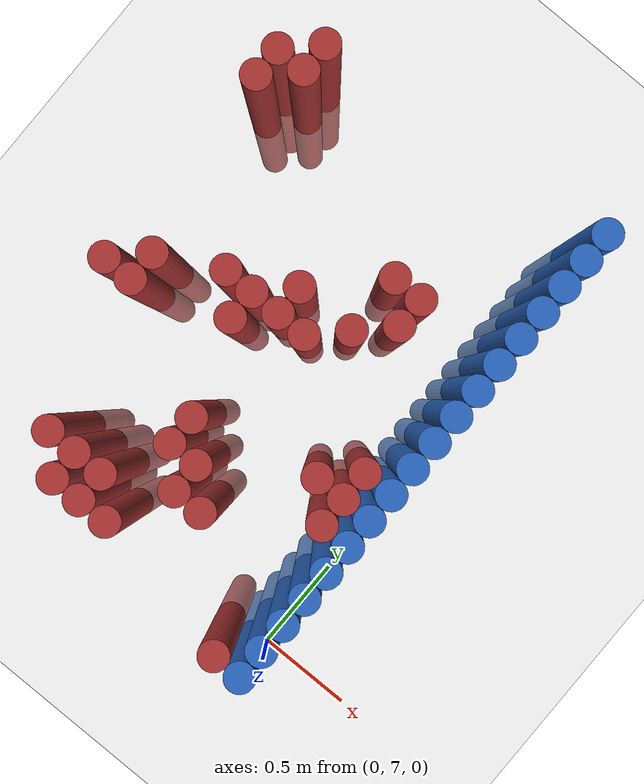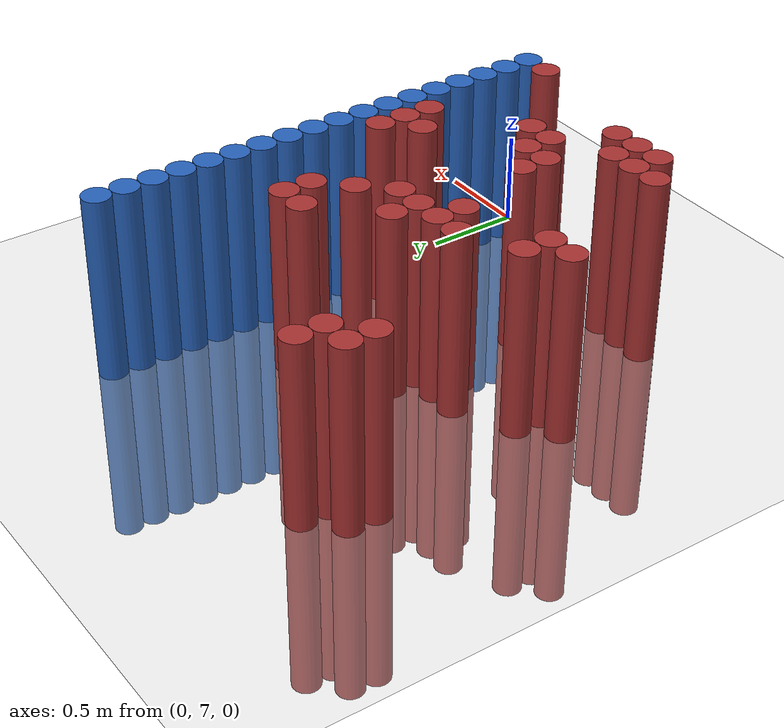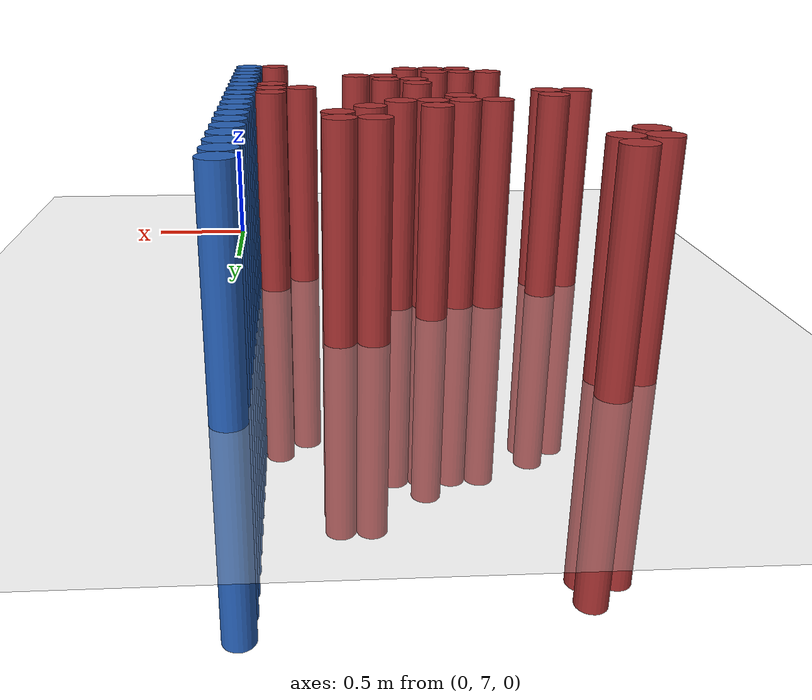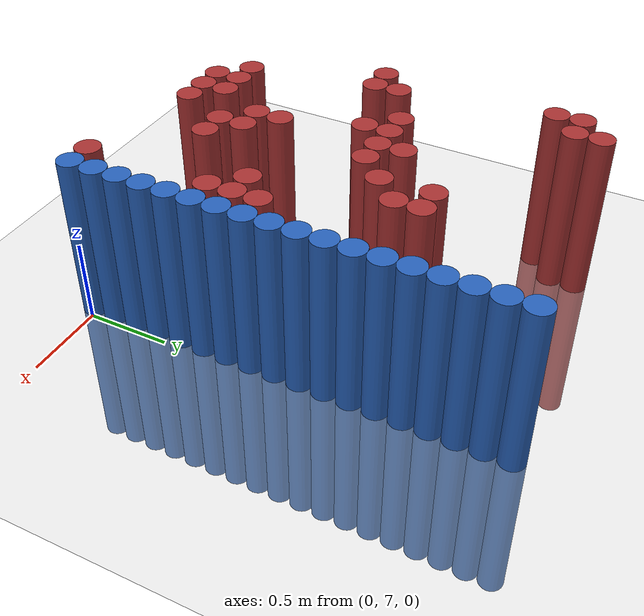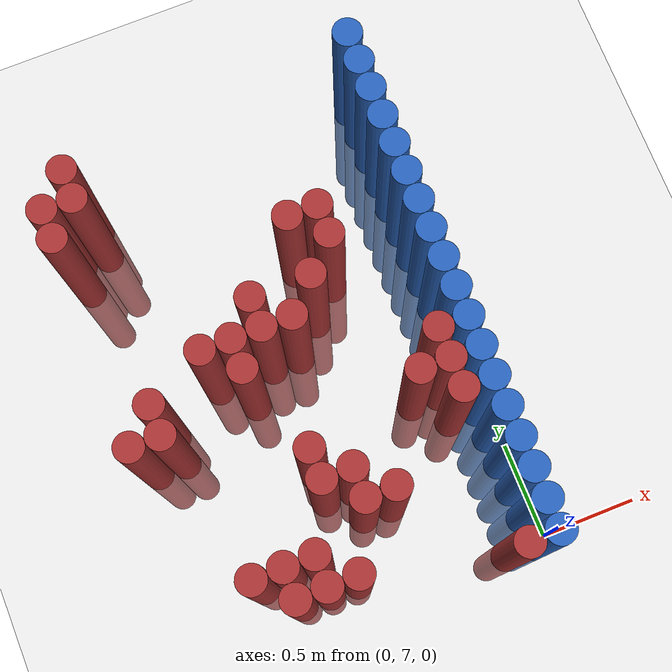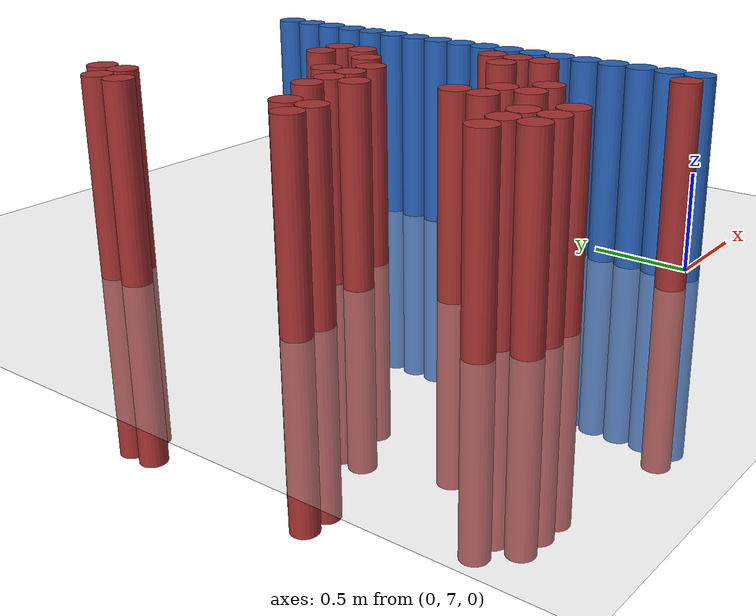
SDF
<sdf version="1.6">
 <world name="default">
  <model name="ground_plane">
   <static>1</static>
   <link name="link">
    <collision name="collision">
     <geometry><plane><normal>0 0 1</normal><size>100 100</size></plane></geometry>
     <surface><friction><ode><mu>100</mu><mu2>50</mu2></ode></friction></surface>
    </collision>
    <visual name="visual">
     <cast_shadows>0</cast_shadows>
     <geometry><plane><normal>0 0 1</normal><size>100 100</size></plane></geometry>
     <material>
      <script><uri>file://media/materials/scripts/gazebo.material</uri><name>Gazebo/Grey</name></script>
     </material>
    </visual>
   </link>
  </model>
  <model name="unit_cylinder_162">
   <static>1</static>
   <pose>-1.725000 8.025000 0.000000 0.000000 0.000000 0.000000</pose>
   <link name="link">
    <inertial>
     <mass>1</mass>
     <inertia><ixx>0.145833</ixx><ixy>0</ixy><ixz>0</ixz><iyy>0.145833</iyy><iyz>0</iyz><izz>0.125</izz></inertia>
    </inertial>
    <collision name="collision">
     <geometry><cylinder><radius>0.075000</radius><length>2</length></cylinder></geometry>
    </collision>
    <visual name="visual">
     <geometry><cylinder><radius>0.075000</radius><length>2</length></cylinder></geometry>
     <material>
      <ambient>0.648000 0.192000 0.192000 1</ambient>
      <diffuse>0.648000 0.192000 0.192000 1</diffuse>
     </material>
     <material>
      <script><name>Gazebo/Grey</name><uri>file://media/materials/scripts/gazebo.material</uri></script>
     </material>
    </visual>
   </link>
  </model>
  <model name="unit_cylinder_163">
   <static>1</static>
   <pose>-1.725000 9.075000 0.000000 0.000000 0.000000 0.000000</pose>
   <link name="link">
    <inertial>
     <mass>1</mass>
     <inertia><ixx>0.145833</ixx><ixy>0</ixy><ixz>0</ixz><iyy>0.145833</iyy><iyz>0</iyz><izz>0.125</izz></inertia>
    </inertial>
    <collision name="collision">
     <geometry><cylinder><radius>0.075000</radius><length>2</length></cylinder></geometry>
    </collision>
    <visual name="visual">
     <geometry><cylinder><radius>0.075000</radius><length>2</length></cylinder></geometry>
     <material>
      <ambient>0.648000 0.192000 0.192000 1</ambient>
      <diffuse>0.648000 0.192000 0.192000 1</diffuse>
     </material>
     <material>
      <script><name>Gazebo/Grey</name><uri>file://media/materials/scripts/gazebo.material</uri></script>
     </material>
    </visual>
   </link>
  </model>
  <model name="unit_cylinder_164">
   <static>1</static>
   <pose>-1.725000 9.225000 0.000000 0.000000 0.000000 0.000000</pose>
   <link name="link">
    <inertial>
     <mass>1</mass>
     <inertia><ixx>0.145833</ixx><ixy>0</ixy><ixz>0</ixz><iyy>0.145833</iyy><iyz>0</iyz><izz>0.125</izz></inertia>
    </inertial>
    <collision name="collision">
     <geometry><cylinder><radius>0.075000</radius><length>2</length></cylinder></geometry>
    </collision>
    <visual name="visual">
     <geometry><cylinder><radius>0.075000</radius><length>2</length></cylinder></geometry>
     <material>
      <ambient>0.648000 0.192000 0.192000 1</ambient>
      <diffuse>0.648000 0.192000 0.192000 1</diffuse>
     </material>
     <material>
      <script><name>Gazebo/Grey</name><uri>file://media/materials/scripts/gazebo.material</uri></script>
     </material>
    </visual>
   </link>
  </model>
  <model name="unit_cylinder_165">
   <static>1</static>
   <pose>-1.575000 8.025000 0.000000 0.000000 0.000000 0.000000</pose>
   <link name="link">
    <inertial>
     <mass>1</mass>
     <inertia><ixx>0.145833</ixx><ixy>0</ixy><ixz>0</ixz><iyy>0.145833</iyy><iyz>0</iyz><izz>0.125</izz></inertia>
    </inertial>
    <collision name="collision">
     <geometry><cylinder><radius>0.075000</radius><length>2</length></cylinder></geometry>
    </collision>
    <visual name="visual">
     <geometry><cylinder><radius>0.075000</radius><length>2</length></cylinder></geometry>
     <material>
      <ambient>0.648000 0.192000 0.192000 1</ambient>
      <diffuse>0.648000 0.192000 0.192000 1</diffuse>
     </material>
     <material>
      <script><name>Gazebo/Grey</name><uri>file://media/materials/scripts/gazebo.material</uri></script>
     </material>
    </visual>
   </link>
  </model>
  <model name="unit_cylinder_166">
   <static>1</static>
   <pose>-1.575000 8.175000 0.000000 0.000000 0.000000 0.000000</pose>
   <link name="link">
    <inertial>
     <mass>1</mass>
     <inertia><ixx>0.145833</ixx><ixy>0</ixy><ixz>0</ixz><iyy>0.145833</iyy><iyz>0</iyz><izz>0.125</izz></inertia>
    </inertial>
    <collision name="collision">
     <geometry><cylinder><radius>0.075000</radius><length>2</length></cylinder></geometry>
    </collision>
    <visual name="visual">
     <geometry><cylinder><radius>0.075000</radius><length>2</length></cylinder></geometry>
     <material>
      <ambient>0.648000 0.192000 0.192000 1</ambient>
      <diffuse>0.648000 0.192000 0.192000 1</diffuse>
     </material>
     <material>
      <script><name>Gazebo/Grey</name><uri>file://media/materials/scripts/gazebo.material</uri></script>
     </material>
    </visual>
   </link>
  </model>
  <model name="unit_cylinder_167">
   <static>1</static>
   <pose>-1.575000 9.225000 0.000000 0.000000 0.000000 0.000000</pose>
   <link name="link">
    <inertial>
     <mass>1</mass>
     <inertia><ixx>0.145833</ixx><ixy>0</ixy><ixz>0</ixz><iyy>0.145833</iyy><iyz>0</iyz><izz>0.125</izz></inertia>
    </inertial>
    <collision name="collision">
     <geometry><cylinder><radius>0.075000</radius><length>2</length></cylinder></geometry>
    </collision>
    <visual name="visual">
     <geometry><cylinder><radius>0.075000</radius><length>2</length></cylinder></geometry>
     <material>
      <ambient>0.648000 0.192000 0.192000 1</ambient>
      <diffuse>0.648000 0.192000 0.192000 1</diffuse>
     </material>
     <material>
      <script><name>Gazebo/Grey</name><uri>file://media/materials/scripts/gazebo.material</uri></script>
     </material>
    </visual>
   </link>
  </model>
  <model name="unit_cylinder_168">
   <static>1</static>
   <pose>-1.575000 9.375000 0.000000 0.000000 0.000000 0.000000</pose>
   <link name="link">
    <inertial>
     <mass>1</mass>
     <inertia><ixx>0.145833</ixx><ixy>0</ixy><ixz>0</ixz><iyy>0.145833</iyy><iyz>0</iyz><izz>0.125</izz></inertia>
    </inertial>
    <collision name="collision">
     <geometry><cylinder><radius>0.075000</radius><length>2</length></cylinder></geometry>
    </collision>
    <visual name="visual">
     <geometry><cylinder><radius>0.075000</radius><length>2</length></cylinder></geometry>
     <material>
      <ambient>0.648000 0.192000 0.192000 1</ambient>
      <diffuse>0.648000 0.192000 0.192000 1</diffuse>
     </material>
     <material>
      <script><name>Gazebo/Grey</name><uri>file://media/materials/scripts/gazebo.material</uri></script>
     </material>
    </visual>
   </link>
  </model>
  <model name="unit_cylinder_169">
   <static>1</static>
   <pose>-1.425000 7.275000 0.000000 0.000000 0.000000 0.000000</pose>
   <link name="link">
    <inertial>
     <mass>1</mass>
     <inertia><ixx>0.145833</ixx><ixy>0</ixy><ixz>0</ixz><iyy>0.145833</iyy><iyz>0</iyz><izz>0.125</izz></inertia>
    </inertial>
    <collision name="collision">
     <geometry><cylinder><radius>0.075000</radius><length>2</length></cylinder></geometry>
    </collision>
    <visual name="visual">
     <geometry><cylinder><radius>0.075000</radius><length>2</length></cylinder></geometry>
     <material>
      <ambient>0.648000 0.192000 0.192000 1</ambient>
      <diffuse>0.648000 0.192000 0.192000 1</diffuse>
     </material>
     <material>
      <script><name>Gazebo/Grey</name><uri>file://media/materials/scripts/gazebo.material</uri></script>
     </material>
    </visual>
   </link>
  </model>
  <model name="unit_cylinder_173">
   <static>1</static>
   <pose>-1.275000 7.125000 0.000000 0.000000 0.000000 0.000000</pose>
   <link name="link">
    <inertial>
     <mass>1</mass>
     <inertia><ixx>0.145833</ixx><ixy>0</ixy><ixz>0</ixz><iyy>0.145833</iyy><iyz>0</iyz><izz>0.125</izz></inertia>
    </inertial>
    <collision name="collision">
     <geometry><cylinder><radius>0.075000</radius><length>2</length></cylinder></geometry>
    </collision>
    <visual name="visual">
     <geometry><cylinder><radius>0.075000</radius><length>2</length></cylinder></geometry>
     <material>
      <ambient>0.648000 0.192000 0.192000 1</ambient>
      <diffuse>0.648000 0.192000 0.192000 1</diffuse>
     </material>
     <material>
      <script><name>Gazebo/Grey</name><uri>file://media/materials/scripts/gazebo.material</uri></script>
     </material>
    </visual>
   </link>
  </model>
  <model name="unit_cylinder_174">
   <static>1</static>
   <pose>-1.275000 7.275000 0.000000 0.000000 0.000000 0.000000</pose>
   <link name="link">
    <inertial>
     <mass>1</mass>
     <inertia><ixx>0.145833</ixx><ixy>0</ixy><ixz>0</ixz><iyy>0.145833</iyy><iyz>0</iyz><izz>0.125</izz></inertia>
    </inertial>
    <collision name="collision">
     <geometry><cylinder><radius>0.075000</radius><length>2</length></cylinder></geometry>
    </collision>
    <visual name="visual">
     <geometry><cylinder><radius>0.075000</radius><length>2</length></cylinder></geometry>
     <material>
      <ambient>0.648000 0.192000 0.192000 1</ambient>
      <diffuse>0.648000 0.192000 0.192000 1</diffuse>
     </material>
     <material>
      <script><name>Gazebo/Grey</name><uri>file://media/materials/scripts/gazebo.material</uri></script>
     </material>
    </visual>
   </link>
  </model>
  <model name="unit_cylinder_175">
   <static>1</static>
   <pose>-1.275000 8.325000 0.000000 0.000000 0.000000 0.000000</pose>
   <link name="link">
    <inertial>
     <mass>1</mass>
     <inertia><ixx>0.145833</ixx><ixy>0</ixy><ixz>0</ixz><iyy>0.145833</iyy><iyz>0</iyz><izz>0.125</izz></inertia>
    </inertial>
    <collision name="collision">
     <geometry><cylinder><radius>0.075000</radius><length>2</length></cylinder></geometry>
    </collision>
    <visual name="visual">
     <geometry><cylinder><radius>0.075000</radius><length>2</length></cylinder></geometry>
     <material>
      <ambient>0.648000 0.192000 0.192000 1</ambient>
      <diffuse>0.648000 0.192000 0.192000 1</diffuse>
     </material>
     <material>
      <script><name>Gazebo/Grey</name><uri>file://media/materials/scripts/gazebo.material</uri></script>
     </material>
    </visual>
   </link>
  </model>
  <model name="unit_cylinder_178">
   <static>1</static>
   <pose>-1.125000 7.125000 0.000000 0.000000 0.000000 0.000000</pose>
   <link name="link">
    <inertial>
     <mass>1</mass>
     <inertia><ixx>0.145833</ixx><ixy>0</ixy><ixz>0</ixz><iyy>0.145833</iyy><iyz>0</iyz><izz>0.125</izz></inertia>
    </inertial>
    <collision name="collision">
     <geometry><cylinder><radius>0.075000</radius><length>2</length></cylinder></geometry>
    </collision>
    <visual name="visual">
     <geometry><cylinder><radius>0.075000</radius><length>2</length></cylinder></geometry>
     <material>
      <ambient>0.648000 0.192000 0.192000 1</ambient>
      <diffuse>0.648000 0.192000 0.192000 1</diffuse>
     </material>
     <material>
      <script><name>Gazebo/Grey</name><uri>file://media/materials/scripts/gazebo.material</uri></script>
     </material>
    </visual>
   </link>
  </model>
  <model name="unit_cylinder_179">
   <static>1</static>
   <pose>-1.125000 7.275000 0.000000 0.000000 0.000000 0.000000</pose>
   <link name="link">
    <inertial>
     <mass>1</mass>
     <inertia><ixx>0.145833</ixx><ixy>0</ixy><ixz>0</ixz><iyy>0.145833</iyy><iyz>0</iyz><izz>0.125</izz></inertia>
    </inertial>
    <collision name="collision">
     <geometry><cylinder><radius>0.075000</radius><length>2</length></cylinder></geometry>
    </collision>
    <visual name="visual">
     <geometry><cylinder><radius>0.075000</radius><length>2</length></cylinder></geometry>
     <material>
      <ambient>0.648000 0.192000 0.192000 1</ambient>
      <diffuse>0.648000 0.192000 0.192000 1</diffuse>
     </material>
     <material>
      <script><name>Gazebo/Grey</name><uri>file://media/materials/scripts/gazebo.material</uri></script>
     </material>
    </visual>
   </link>
  </model>
  <model name="unit_cylinder_180">
   <static>1</static>
   <pose>-1.125000 8.175000 0.000000 0.000000 0.000000 0.000000</pose>
   <link name="link">
    <inertial>
     <mass>1</mass>
     <inertia><ixx>0.145833</ixx><ixy>0</ixy><ixz>0</ixz><iyy>0.145833</iyy><iyz>0</iyz><izz>0.125</izz></inertia>
    </inertial>
    <collision name="collision">
     <geometry><cylinder><radius>0.075000</radius><length>2</length></cylinder></geometry>
    </collision>
    <visual name="visual">
     <geometry><cylinder><radius>0.075000</radius><length>2</length></cylinder></geometry>
     <material>
      <ambient>0.648000 0.192000 0.192000 1</ambient>
      <diffuse>0.648000 0.192000 0.192000 1</diffuse>
     </material>
     <material>
      <script><name>Gazebo/Grey</name><uri>file://media/materials/scripts/gazebo.material</uri></script>
     </material>
    </visual>
   </link>
  </model>
  <model name="unit_cylinder_181">
   <static>1</static>
   <pose>-1.125000 8.325000 0.000000 0.000000 0.000000 0.000000</pose>
   <link name="link">
    <inertial>
     <mass>1</mass>
     <inertia><ixx>0.145833</ixx><ixy>0</ixy><ixz>0</ixz><iyy>0.145833</iyy><iyz>0</iyz><izz>0.125</izz></inertia>
    </inertial>
    <collision name="collision">
     <geometry><cylinder><radius>0.075000</radius><length>2</length></cylinder></geometry>
    </collision>
    <visual name="visual">
     <geometry><cylinder><radius>0.075000</radius><length>2</length></cylinder></geometry>
     <material>
      <ambient>0.648000 0.192000 0.192000 1</ambient>
      <diffuse>0.648000 0.192000 0.192000 1</diffuse>
     </material>
     <material>
      <script><name>Gazebo/Grey</name><uri>file://media/materials/scripts/gazebo.material</uri></script>
     </material>
    </visual>
   </link>
  </model>
  <model name="unit_cylinder_182">
   <static>1</static>
   <pose>-0.975000 7.125000 0.000000 0.000000 0.000000 0.000000</pose>
   <link name="link">
    <inertial>
     <mass>1</mass>
     <inertia><ixx>0.145833</ixx><ixy>0</ixy><ixz>0</ixz><iyy>0.145833</iyy><iyz>0</iyz><izz>0.125</izz></inertia>
    </inertial>
    <collision name="collision">
     <geometry><cylinder><radius>0.075000</radius><length>2</length></cylinder></geometry>
    </collision>
    <visual name="visual">
     <geometry><cylinder><radius>0.075000</radius><length>2</length></cylinder></geometry>
     <material>
      <ambient>0.648000 0.192000 0.192000 1</ambient>
      <diffuse>0.648000 0.192000 0.192000 1</diffuse>
     </material>
     <material>
      <script><name>Gazebo/Grey</name><uri>file://media/materials/scripts/gazebo.material</uri></script>
     </material>
    </visual>
   </link>
  </model>
  <model name="unit_cylinder_183">
   <static>1</static>
   <pose>-0.975000 7.575000 0.000000 0.000000 0.000000 0.000000</pose>
   <link name="link">
    <inertial>
     <mass>1</mass>
     <inertia><ixx>0.145833</ixx><ixy>0</ixy><ixz>0</ixz><iyy>0.145833</iyy><iyz>0</iyz><izz>0.125</izz></inertia>
    </inertial>
    <collision name="collision">
     <geometry><cylinder><radius>0.075000</radius><length>2</length></cylinder></geometry>
    </collision>
    <visual name="visual">
     <geometry><cylinder><radius>0.075000</radius><length>2</length></cylinder></geometry>
     <material>
      <ambient>0.648000 0.192000 0.192000 1</ambient>
      <diffuse>0.648000 0.192000 0.192000 1</diffuse>
     </material>
     <material>
      <script><name>Gazebo/Grey</name><uri>file://media/materials/scripts/gazebo.material</uri></script>
     </material>
    </visual>
   </link>
  </model>
  <model name="unit_cylinder_184">
   <static>1</static>
   <pose>-0.975000 7.725000 0.000000 0.000000 0.000000 0.000000</pose>
   <link name="link">
    <inertial>
     <mass>1</mass>
     <inertia><ixx>0.145833</ixx><ixy>0</ixy><ixz>0</ixz><iyy>0.145833</iyy><iyz>0</iyz><izz>0.125</izz></inertia>
    </inertial>
    <collision name="collision">
     <geometry><cylinder><radius>0.075000</radius><length>2</length></cylinder></geometry>
    </collision>
    <visual name="visual">
     <geometry><cylinder><radius>0.075000</radius><length>2</length></cylinder></geometry>
     <material>
      <ambient>0.648000 0.192000 0.192000 1</ambient>
      <diffuse>0.648000 0.192000 0.192000 1</diffuse>
     </material>
     <material>
      <script><name>Gazebo/Grey</name><uri>file://media/materials/scripts/gazebo.material</uri></script>
     </material>
    </visual>
   </link>
  </model>
  <model name="unit_cylinder_185">
   <static>1</static>
   <pose>-0.975000 8.325000 0.000000 0.000000 0.000000 0.000000</pose>
   <link name="link">
    <inertial>
     <mass>1</mass>
     <inertia><ixx>0.145833</ixx><ixy>0</ixy><ixz>0</ixz><iyy>0.145833</iyy><iyz>0</iyz><izz>0.125</izz></inertia>
    </inertial>
    <collision name="collision">
     <geometry><cylinder><radius>0.075000</radius><length>2</length></cylinder></geometry>
    </collision>
    <visual name="visual">
     <geometry><cylinder><radius>0.075000</radius><length>2</length></cylinder></geometry>
     <material>
      <ambient>0.648000 0.192000 0.192000 1</ambient>
      <diffuse>0.648000 0.192000 0.192000 1</diffuse>
     </material>
     <material>
      <script><name>Gazebo/Grey</name><uri>file://media/materials/scripts/gazebo.material</uri></script>
     </material>
    </visual>
   </link>
  </model>
  <model name="unit_cylinder_186">
   <static>1</static>
   <pose>-0.975000 8.475000 0.000000 0.000000 0.000000 0.000000</pose>
   <link name="link">
    <inertial>
     <mass>1</mass>
     <inertia><ixx>0.145833</ixx><ixy>0</ixy><ixz>0</ixz><iyy>0.145833</iyy><iyz>0</iyz><izz>0.125</izz></inertia>
    </inertial>
    <collision name="collision">
     <geometry><cylinder><radius>0.075000</radius><length>2</length></cylinder></geometry>
    </collision>
    <visual name="visual">
     <geometry><cylinder><radius>0.075000</radius><length>2</length></cylinder></geometry>
     <material>
      <ambient>0.648000 0.192000 0.192000 1</ambient>
      <diffuse>0.648000 0.192000 0.192000 1</diffuse>
     </material>
     <material>
      <script><name>Gazebo/Grey</name><uri>file://media/materials/scripts/gazebo.material</uri></script>
     </material>
    </visual>
   </link>
  </model>
  <model name="unit_cylinder_187">
   <static>1</static>
   <pose>-0.825000 7.425000 0.000000 0.000000 0.000000 0.000000</pose>
   <link name="link">
    <inertial>
     <mass>1</mass>
     <inertia><ixx>0.145833</ixx><ixy>0</ixy><ixz>0</ixz><iyy>0.145833</iyy><iyz>0</iyz><izz>0.125</izz></inertia>
    </inertial>
    <collision name="collision">
     <geometry><cylinder><radius>0.075000</radius><length>2</length></cylinder></geometry>
    </collision>
    <visual name="visual">
     <geometry><cylinder><radius>0.075000</radius><length>2</length></cylinder></geometry>
     <material>
      <ambient>0.648000 0.192000 0.192000 1</ambient>
      <diffuse>0.648000 0.192000 0.192000 1</diffuse>
     </material>
     <material>
      <script><name>Gazebo/Grey</name><uri>file://media/materials/scripts/gazebo.material</uri></script>
     </material>
    </visual>
   </link>
  </model>
  <model name="unit_cylinder_188">
   <static>1</static>
   <pose>-0.825000 7.575000 0.000000 0.000000 0.000000 0.000000</pose>
   <link name="link">
    <inertial>
     <mass>1</mass>
     <inertia><ixx>0.145833</ixx><ixy>0</ixy><ixz>0</ixz><iyy>0.145833</iyy><iyz>0</iyz><izz>0.125</izz></inertia>
    </inertial>
    <collision name="collision">
     <geometry><cylinder><radius>0.075000</radius><length>2</length></cylinder></geometry>
    </collision>
    <visual name="visual">
     <geometry><cylinder><radius>0.075000</radius><length>2</length></cylinder></geometry>
     <material>
      <ambient>0.648000 0.192000 0.192000 1</ambient>
      <diffuse>0.648000 0.192000 0.192000 1</diffuse>
     </material>
     <material>
      <script><name>Gazebo/Grey</name><uri>file://media/materials/scripts/gazebo.material</uri></script>
     </material>
    </visual>
   </link>
  </model>
  <model name="unit_cylinder_189">
   <static>1</static>
   <pose>-0.825000 8.325000 0.000000 0.000000 0.000000 0.000000</pose>
   <link name="link">
    <inertial>
     <mass>1</mass>
     <inertia><ixx>0.145833</ixx><ixy>0</ixy><ixz>0</ixz><iyy>0.145833</iyy><iyz>0</iyz><izz>0.125</izz></inertia>
    </inertial>
    <collision name="collision">
     <geometry><cylinder><radius>0.075000</radius><length>2</length></cylinder></geometry>
    </collision>
    <visual name="visual">
     <geometry><cylinder><radius>0.075000</radius><length>2</length></cylinder></geometry>
     <material>
      <ambient>0.648000 0.192000 0.192000 1</ambient>
      <diffuse>0.648000 0.192000 0.192000 1</diffuse>
     </material>
     <material>
      <script><name>Gazebo/Grey</name><uri>file://media/materials/scripts/gazebo.material</uri></script>
     </material>
    </visual>
   </link>
  </model>
  <model name="unit_cylinder_193">
   <static>1</static>
   <pose>-0.675000 7.425000 0.000000 0.000000 0.000000 0.000000</pose>
   <link name="link">
    <inertial>
     <mass>1</mass>
     <inertia><ixx>0.145833</ixx><ixy>0</ixy><ixz>0</ixz><iyy>0.145833</iyy><iyz>0</iyz><izz>0.125</izz></inertia>
    </inertial>
    <collision name="collision">
     <geometry><cylinder><radius>0.075000</radius><length>2</length></cylinder></geometry>
    </collision>
    <visual name="visual">
     <geometry><cylinder><radius>0.075000</radius><length>2</length></cylinder></geometry>
     <material>
      <ambient>0.648000 0.192000 0.192000 1</ambient>
      <diffuse>0.648000 0.192000 0.192000 1</diffuse>
     </material>
     <material>
      <script><name>Gazebo/Grey</name><uri>file://media/materials/scripts/gazebo.material</uri></script>
     </material>
    </visual>
   </link>
  </model>
  <model name="unit_cylinder_194">
   <static>1</static>
   <pose>-0.675000 8.475000 0.000000 0.000000 0.000000 0.000000</pose>
   <link name="link">
    <inertial>
     <mass>1</mass>
     <inertia><ixx>0.145833</ixx><ixy>0</ixy><ixz>0</ixz><iyy>0.145833</iyy><iyz>0</iyz><izz>0.125</izz></inertia>
    </inertial>
    <collision name="collision">
     <geometry><cylinder><radius>0.075000</radius><length>2</length></cylinder></geometry>
    </collision>
    <visual name="visual">
     <geometry><cylinder><radius>0.075000</radius><length>2</length></cylinder></geometry>
     <material>
      <ambient>0.648000 0.192000 0.192000 1</ambient>
      <diffuse>0.648000 0.192000 0.192000 1</diffuse>
     </material>
     <material>
      <script><name>Gazebo/Grey</name><uri>file://media/materials/scripts/gazebo.material</uri></script>
     </material>
    </visual>
   </link>
  </model>
  <model name="unit_cylinder_195">
   <static>1</static>
   <pose>-0.675000 8.775000 0.000000 0.000000 0.000000 0.000000</pose>
   <link name="link">
    <inertial>
     <mass>1</mass>
     <inertia><ixx>0.145833</ixx><ixy>0</ixy><ixz>0</ixz><iyy>0.145833</iyy><iyz>0</iyz><izz>0.125</izz></inertia>
    </inertial>
    <collision name="collision">
     <geometry><cylinder><radius>0.075000</radius><length>2</length></cylinder></geometry>
    </collision>
    <visual name="visual">
     <geometry><cylinder><radius>0.075000</radius><length>2</length></cylinder></geometry>
     <material>
      <ambient>0.648000 0.192000 0.192000 1</ambient>
      <diffuse>0.648000 0.192000 0.192000 1</diffuse>
     </material>
     <material>
      <script><name>Gazebo/Grey</name><uri>file://media/materials/scripts/gazebo.material</uri></script>
     </material>
    </visual>
   </link>
  </model>
  <model name="unit_cylinder_200">
   <static>1</static>
   <pose>-0.525000 8.625000 0.000000 0.000000 0.000000 0.000000</pose>
   <link name="link">
    <inertial>
     <mass>1</mass>
     <inertia><ixx>0.145833</ixx><ixy>0</ixy><ixz>0</ixz><iyy>0.145833</iyy><iyz>0</iyz><izz>0.125</izz></inertia>
    </inertial>
    <collision name="collision">
     <geometry><cylinder><radius>0.075000</radius><length>2</length></cylinder></geometry>
    </collision>
    <visual name="visual">
     <geometry><cylinder><radius>0.075000</radius><length>2</length></cylinder></geometry>
     <material>
      <ambient>0.648000 0.192000 0.192000 1</ambient>
      <diffuse>0.648000 0.192000 0.192000 1</diffuse>
     </material>
     <material>
      <script><name>Gazebo/Grey</name><uri>file://media/materials/scripts/gazebo.material</uri></script>
     </material>
    </visual>
   </link>
  </model>
  <model name="unit_cylinder_201">
   <static>1</static>
   <pose>-0.525000 8.775000 0.000000 0.000000 0.000000 0.000000</pose>
   <link name="link">
    <inertial>
     <mass>1</mass>
     <inertia><ixx>0.145833</ixx><ixy>0</ixy><ixz>0</ixz><iyy>0.145833</iyy><iyz>0</iyz><izz>0.125</izz></inertia>
    </inertial>
    <collision name="collision">
     <geometry><cylinder><radius>0.075000</radius><length>2</length></cylinder></geometry>
    </collision>
    <visual name="visual">
     <geometry><cylinder><radius>0.075000</radius><length>2</length></cylinder></geometry>
     <material>
      <ambient>0.648000 0.192000 0.192000 1</ambient>
      <diffuse>0.648000 0.192000 0.192000 1</diffuse>
     </material>
     <material>
      <script><name>Gazebo/Grey</name><uri>file://media/materials/scripts/gazebo.material</uri></script>
     </material>
    </visual>
   </link>
  </model>
  <model name="unit_cylinder_209">
   <static>1</static>
   <pose>-0.375000 7.875000 0.000000 0.000000 0.000000 0.000000</pose>
   <link name="link">
    <inertial>
     <mass>1</mass>
     <inertia><ixx>0.145833</ixx><ixy>0</ixy><ixz>0</ixz><iyy>0.145833</iyy><iyz>0</iyz><izz>0.125</izz></inertia>
    </inertial>
    <collision name="collision">
     <geometry><cylinder><radius>0.075000</radius><length>2</length></cylinder></geometry>
    </collision>
    <visual name="visual">
     <geometry><cylinder><radius>0.075000</radius><length>2</length></cylinder></geometry>
     <material>
      <ambient>0.648000 0.192000 0.192000 1</ambient>
      <diffuse>0.648000 0.192000 0.192000 1</diffuse>
     </material>
     <material>
      <script><name>Gazebo/Grey</name><uri>file://media/materials/scripts/gazebo.material</uri></script>
     </material>
    </visual>
   </link>
  </model>
  <model name="unit_cylinder_218">
   <static>1</static>
   <pose>-0.225000 6.975000 0.000000 0.000000 0.000000 0.000000</pose>
   <link name="link">
    <inertial>
     <mass>1</mass>
     <inertia><ixx>0.145833</ixx><ixy>0</ixy><ixz>0</ixz><iyy>0.145833</iyy><iyz>0</iyz><izz>0.125</izz></inertia>
    </inertial>
    <collision name="collision">
     <geometry><cylinder><radius>0.075000</radius><length>2</length></cylinder></geometry>
    </collision>
    <visual name="visual">
     <geometry><cylinder><radius>0.075000</radius><length>2</length></cylinder></geometry>
     <material>
      <ambient>0.648000 0.192000 0.192000 1</ambient>
      <diffuse>0.648000 0.192000 0.192000 1</diffuse>
     </material>
     <material>
      <script><name>Gazebo/Grey</name><uri>file://media/materials/scripts/gazebo.material</uri></script>
     </material>
    </visual>
   </link>
  </model>
  <model name="unit_cylinder_219">
   <static>1</static>
   <pose>-0.225000 7.725000 0.000000 0.000000 0.000000 0.000000</pose>
   <link name="link">
    <inertial>
     <mass>1</mass>
     <inertia><ixx>0.145833</ixx><ixy>0</ixy><ixz>0</ixz><iyy>0.145833</iyy><iyz>0</iyz><izz>0.125</izz></inertia>
    </inertial>
    <collision name="collision">
     <geometry><cylinder><radius>0.075000</radius><length>2</length></cylinder></geometry>
    </collision>
    <visual name="visual">
     <geometry><cylinder><radius>0.075000</radius><length>2</length></cylinder></geometry>
     <material>
      <ambient>0.648000 0.192000 0.192000 1</ambient>
      <diffuse>0.648000 0.192000 0.192000 1</diffuse>
     </material>
     <material>
      <script><name>Gazebo/Grey</name><uri>file://media/materials/scripts/gazebo.material</uri></script>
     </material>
    </visual>
   </link>
  </model>
  <model name="unit_cylinder_220">
   <static>1</static>
   <pose>-0.225000 7.875000 0.000000 0.000000 0.000000 0.000000</pose>
   <link name="link">
    <inertial>
     <mass>1</mass>
     <inertia><ixx>0.145833</ixx><ixy>0</ixy><ixz>0</ixz><iyy>0.145833</iyy><iyz>0</iyz><izz>0.125</izz></inertia>
    </inertial>
    <collision name="collision">
     <geometry><cylinder><radius>0.075000</radius><length>2</length></cylinder></geometry>
    </collision>
    <visual name="visual">
     <geometry><cylinder><radius>0.075000</radius><length>2</length></cylinder></geometry>
     <material>
      <ambient>0.648000 0.192000 0.192000 1</ambient>
      <diffuse>0.648000 0.192000 0.192000 1</diffuse>
     </material>
     <material>
      <script><name>Gazebo/Grey</name><uri>file://media/materials/scripts/gazebo.material</uri></script>
     </material>
    </visual>
   </link>
  </model>
  <model name="unit_cylinder_221">
   <static>1</static>
   <pose>-0.225000 8.025000 0.000000 0.000000 0.000000 0.000000</pose>
   <link name="link">
    <inertial>
     <mass>1</mass>
     <inertia><ixx>0.145833</ixx><ixy>0</ixy><ixz>0</ixz><iyy>0.145833</iyy><iyz>0</iyz><izz>0.125</izz></inertia>
    </inertial>
    <collision name="collision">
     <geometry><cylinder><radius>0.075000</radius><length>2</length></cylinder></geometry>
    </collision>
    <visual name="visual">
     <geometry><cylinder><radius>0.075000</radius><length>2</length></cylinder></geometry>
     <material>
      <ambient>0.648000 0.192000 0.192000 1</ambient>
      <diffuse>0.648000 0.192000 0.192000 1</diffuse>
     </material>
     <material>
      <script><name>Gazebo/Grey</name><uri>file://media/materials/scripts/gazebo.material</uri></script>
     </material>
    </visual>
   </link>
  </model>
  <model name="unit_cylinder_234">
   <static>1</static>
   <pose>-0.075000 6.975000 0.000000 0.000000 0.000000 0.000000</pose>
   <link name="link">
    <inertial>
     <mass>1</mass>
     <inertia><ixx>0.145833</ixx><ixy>0</ixy><ixz>0</ixz><iyy>0.145833</iyy><iyz>0</iyz><izz>0.125</izz></inertia>
    </inertial>
    <collision name="collision">
     <geometry><cylinder><radius>0.075000</radius><length>2</length></cylinder></geometry>
    </collision>
    <visual name="visual">
     <geometry><cylinder><radius>0.075000</radius><length>2</length></cylinder></geometry>
     <material>
      <ambient>0.152000 0.379000 0.720000 1</ambient>
      <diffuse>0.152000 0.379000 0.720000 1</diffuse>
     </material>
     <material>
      <script><name>Gazebo/Grey</name><uri>file://media/materials/scripts/gazebo.material</uri></script>
     </material>
    </visual>
   </link>
  </model>
  <model name="unit_cylinder_235">
   <static>1</static>
   <pose>-0.075000 7.125000 0.000000 0.000000 0.000000 0.000000</pose>
   <link name="link">
    <inertial>
     <mass>1</mass>
     <inertia><ixx>0.145833</ixx><ixy>0</ixy><ixz>0</ixz><iyy>0.145833</iyy><iyz>0</iyz><izz>0.125</izz></inertia>
    </inertial>
    <collision name="collision">
     <geometry><cylinder><radius>0.075000</radius><length>2</length></cylinder></geometry>
    </collision>
    <visual name="visual">
     <geometry><cylinder><radius>0.075000</radius><length>2</length></cylinder></geometry>
     <material>
      <ambient>0.152000 0.379000 0.720000 1</ambient>
      <diffuse>0.152000 0.379000 0.720000 1</diffuse>
     </material>
     <material>
      <script><name>Gazebo/Grey</name><uri>file://media/materials/scripts/gazebo.material</uri></script>
     </material>
    </visual>
   </link>
  </model>
  <model name="unit_cylinder_236">
   <static>1</static>
   <pose>-0.075000 7.275000 0.000000 0.000000 0.000000 0.000000</pose>
   <link name="link">
    <inertial>
     <mass>1</mass>
     <inertia><ixx>0.145833</ixx><ixy>0</ixy><ixz>0</ixz><iyy>0.145833</iyy><iyz>0</iyz><izz>0.125</izz></inertia>
    </inertial>
    <collision name="collision">
     <geometry><cylinder><radius>0.075000</radius><length>2</length></cylinder></geometry>
    </collision>
    <visual name="visual">
     <geometry><cylinder><radius>0.075000</radius><length>2</length></cylinder></geometry>
     <material>
      <ambient>0.152000 0.379000 0.720000 1</ambient>
      <diffuse>0.152000 0.379000 0.720000 1</diffuse>
     </material>
     <material>
      <script><name>Gazebo/Grey</name><uri>file://media/materials/scripts/gazebo.material</uri></script>
     </material>
    </visual>
   </link>
  </model>
  <model name="unit_cylinder_237">
   <static>1</static>
   <pose>-0.075000 7.425000 0.000000 0.000000 0.000000 0.000000</pose>
   <link name="link">
    <inertial>
     <mass>1</mass>
     <inertia><ixx>0.145833</ixx><ixy>0</ixy><ixz>0</ixz><iyy>0.145833</iyy><iyz>0</iyz><izz>0.125</izz></inertia>
    </inertial>
    <collision name="collision">
     <geometry><cylinder><radius>0.075000</radius><length>2</length></cylinder></geometry>
    </collision>
    <visual name="visual">
     <geometry><cylinder><radius>0.075000</radius><length>2</length></cylinder></geometry>
     <material>
      <ambient>0.152000 0.379000 0.720000 1</ambient>
      <diffuse>0.152000 0.379000 0.720000 1</diffuse>
     </material>
     <material>
      <script><name>Gazebo/Grey</name><uri>file://media/materials/scripts/gazebo.material</uri></script>
     </material>
    </visual>
   </link>
  </model>
  <model name="unit_cylinder_238">
   <static>1</static>
   <pose>-0.075000 7.575000 0.000000 0.000000 0.000000 0.000000</pose>
   <link name="link">
    <inertial>
     <mass>1</mass>
     <inertia><ixx>0.145833</ixx><ixy>0</ixy><ixz>0</ixz><iyy>0.145833</iyy><iyz>0</iyz><izz>0.125</izz></inertia>
    </inertial>
    <collision name="collision">
     <geometry><cylinder><radius>0.075000</radius><length>2</length></cylinder></geometry>
    </collision>
    <visual name="visual">
     <geometry><cylinder><radius>0.075000</radius><length>2</length></cylinder></geometry>
     <material>
      <ambient>0.152000 0.379000 0.720000 1</ambient>
      <diffuse>0.152000 0.379000 0.720000 1</diffuse>
     </material>
     <material>
      <script><name>Gazebo/Grey</name><uri>file://media/materials/scripts/gazebo.material</uri></script>
     </material>
    </visual>
   </link>
  </model>
  <model name="unit_cylinder_239">
   <static>1</static>
   <pose>-0.075000 7.725000 0.000000 0.000000 0.000000 0.000000</pose>
   <link name="link">
    <inertial>
     <mass>1</mass>
     <inertia><ixx>0.145833</ixx><ixy>0</ixy><ixz>0</ixz><iyy>0.145833</iyy><iyz>0</iyz><izz>0.125</izz></inertia>
    </inertial>
    <collision name="collision">
     <geometry><cylinder><radius>0.075000</radius><length>2</length></cylinder></geometry>
    </collision>
    <visual name="visual">
     <geometry><cylinder><radius>0.075000</radius><length>2</length></cylinder></geometry>
     <material>
      <ambient>0.152000 0.379000 0.720000 1</ambient>
      <diffuse>0.152000 0.379000 0.720000 1</diffuse>
     </material>
     <material>
      <script><name>Gazebo/Grey</name><uri>file://media/materials/scripts/gazebo.material</uri></script>
     </material>
    </visual>
   </link>
  </model>
  <model name="unit_cylinder_240">
   <static>1</static>
   <pose>-0.075000 7.875000 0.000000 0.000000 0.000000 0.000000</pose>
   <link name="link">
    <inertial>
     <mass>1</mass>
     <inertia><ixx>0.145833</ixx><ixy>0</ixy><ixz>0</ixz><iyy>0.145833</iyy><iyz>0</iyz><izz>0.125</izz></inertia>
    </inertial>
    <collision name="collision">
     <geometry><cylinder><radius>0.075000</radius><length>2</length></cylinder></geometry>
    </collision>
    <visual name="visual">
     <geometry><cylinder><radius>0.075000</radius><length>2</length></cylinder></geometry>
     <material>
      <ambient>0.152000 0.379000 0.720000 1</ambient>
      <diffuse>0.152000 0.379000 0.720000 1</diffuse>
     </material>
     <material>
      <script><name>Gazebo/Grey</name><uri>file://media/materials/scripts/gazebo.material</uri></script>
     </material>
    </visual>
   </link>
  </model>
  <model name="unit_cylinder_241">
   <static>1</static>
   <pose>-0.075000 8.025000 0.000000 0.000000 0.000000 0.000000</pose>
   <link name="link">
    <inertial>
     <mass>1</mass>
     <inertia><ixx>0.145833</ixx><ixy>0</ixy><ixz>0</ixz><iyy>0.145833</iyy><iyz>0</iyz><izz>0.125</izz></inertia>
    </inertial>
    <collision name="collision">
     <geometry><cylinder><radius>0.075000</radius><length>2</length></cylinder></geometry>
    </collision>
    <visual name="visual">
     <geometry><cylinder><radius>0.075000</radius><length>2</length></cylinder></geometry>
     <material>
      <ambient>0.152000 0.379000 0.720000 1</ambient>
      <diffuse>0.152000 0.379000 0.720000 1</diffuse>
     </material>
     <material>
      <script><name>Gazebo/Grey</name><uri>file://media/materials/scripts/gazebo.material</uri></script>
     </material>
    </visual>
   </link>
  </model>
  <model name="unit_cylinder_242">
   <static>1</static>
   <pose>-0.075000 8.175000 0.000000 0.000000 0.000000 0.000000</pose>
   <link name="link">
    <inertial>
     <mass>1</mass>
     <inertia><ixx>0.145833</ixx><ixy>0</ixy><ixz>0</ixz><iyy>0.145833</iyy><iyz>0</iyz><izz>0.125</izz></inertia>
    </inertial>
    <collision name="collision">
     <geometry><cylinder><radius>0.075000</radius><length>2</length></cylinder></geometry>
    </collision>
    <visual name="visual">
     <geometry><cylinder><radius>0.075000</radius><length>2</length></cylinder></geometry>
     <material>
      <ambient>0.152000 0.379000 0.720000 1</ambient>
      <diffuse>0.152000 0.379000 0.720000 1</diffuse>
     </material>
     <material>
      <script><name>Gazebo/Grey</name><uri>file://media/materials/scripts/gazebo.material</uri></script>
     </material>
    </visual>
   </link>
  </model>
  <model name="unit_cylinder_243">
   <static>1</static>
   <pose>-0.075000 8.325000 0.000000 0.000000 0.000000 0.000000</pose>
   <link name="link">
    <inertial>
     <mass>1</mass>
     <inertia><ixx>0.145833</ixx><ixy>0</ixy><ixz>0</ixz><iyy>0.145833</iyy><iyz>0</iyz><izz>0.125</izz></inertia>
    </inertial>
    <collision name="collision">
     <geometry><cylinder><radius>0.075000</radius><length>2</length></cylinder></geometry>
    </collision>
    <visual name="visual">
     <geometry><cylinder><radius>0.075000</radius><length>2</length></cylinder></geometry>
     <material>
      <ambient>0.152000 0.379000 0.720000 1</ambient>
      <diffuse>0.152000 0.379000 0.720000 1</diffuse>
     </material>
     <material>
      <script><name>Gazebo/Grey</name><uri>file://media/materials/scripts/gazebo.material</uri></script>
     </material>
    </visual>
   </link>
  </model>
  <model name="unit_cylinder_244">
   <static>1</static>
   <pose>-0.075000 8.475000 0.000000 0.000000 0.000000 0.000000</pose>
   <link name="link">
    <inertial>
     <mass>1</mass>
     <inertia><ixx>0.145833</ixx><ixy>0</ixy><ixz>0</ixz><iyy>0.145833</iyy><iyz>0</iyz><izz>0.125</izz></inertia>
    </inertial>
    <collision name="collision">
     <geometry><cylinder><radius>0.075000</radius><length>2</length></cylinder></geometry>
    </collision>
    <visual name="visual">
     <geometry><cylinder><radius>0.075000</radius><length>2</length></cylinder></geometry>
     <material>
      <ambient>0.152000 0.379000 0.720000 1</ambient>
      <diffuse>0.152000 0.379000 0.720000 1</diffuse>
     </material>
     <material>
      <script><name>Gazebo/Grey</name><uri>file://media/materials/scripts/gazebo.material</uri></script>
     </material>
    </visual>
   </link>
  </model>
  <model name="unit_cylinder_245">
   <static>1</static>
   <pose>-0.075000 8.625000 0.000000 0.000000 0.000000 0.000000</pose>
   <link name="link">
    <inertial>
     <mass>1</mass>
     <inertia><ixx>0.145833</ixx><ixy>0</ixy><ixz>0</ixz><iyy>0.145833</iyy><iyz>0</iyz><izz>0.125</izz></inertia>
    </inertial>
    <collision name="collision">
     <geometry><cylinder><radius>0.075000</radius><length>2</length></cylinder></geometry>
    </collision>
    <visual name="visual">
     <geometry><cylinder><radius>0.075000</radius><length>2</length></cylinder></geometry>
     <material>
      <ambient>0.152000 0.379000 0.720000 1</ambient>
      <diffuse>0.152000 0.379000 0.720000 1</diffuse>
     </material>
     <material>
      <script><name>Gazebo/Grey</name><uri>file://media/materials/scripts/gazebo.material</uri></script>
     </material>
    </visual>
   </link>
  </model>
  <model name="unit_cylinder_246">
   <static>1</static>
   <pose>-0.075000 8.775000 0.000000 0.000000 0.000000 0.000000</pose>
   <link name="link">
    <inertial>
     <mass>1</mass>
     <inertia><ixx>0.145833</ixx><ixy>0</ixy><ixz>0</ixz><iyy>0.145833</iyy><iyz>0</iyz><izz>0.125</izz></inertia>
    </inertial>
    <collision name="collision">
     <geometry><cylinder><radius>0.075000</radius><length>2</length></cylinder></geometry>
    </collision>
    <visual name="visual">
     <geometry><cylinder><radius>0.075000</radius><length>2</length></cylinder></geometry>
     <material>
      <ambient>0.152000 0.379000 0.720000 1</ambient>
      <diffuse>0.152000 0.379000 0.720000 1</diffuse>
     </material>
     <material>
      <script><name>Gazebo/Grey</name><uri>file://media/materials/scripts/gazebo.material</uri></script>
     </material>
    </visual>
   </link>
  </model>
  <model name="unit_cylinder_247">
   <static>1</static>
   <pose>-0.075000 8.925000 0.000000 0.000000 0.000000 0.000000</pose>
   <link name="link">
    <inertial>
     <mass>1</mass>
     <inertia><ixx>0.145833</ixx><ixy>0</ixy><ixz>0</ixz><iyy>0.145833</iyy><iyz>0</iyz><izz>0.125</izz></inertia>
    </inertial>
    <collision name="collision">
     <geometry><cylinder><radius>0.075000</radius><length>2</length></cylinder></geometry>
    </collision>
    <visual name="visual">
     <geometry><cylinder><radius>0.075000</radius><length>2</length></cylinder></geometry>
     <material>
      <ambient>0.152000 0.379000 0.720000 1</ambient>
      <diffuse>0.152000 0.379000 0.720000 1</diffuse>
     </material>
     <material>
      <script><name>Gazebo/Grey</name><uri>file://media/materials/scripts/gazebo.material</uri></script>
     </material>
    </visual>
   </link>
  </model>
  <model name="unit_cylinder_248">
   <static>1</static>
   <pose>-0.075000 9.075000 0.000000 0.000000 0.000000 0.000000</pose>
   <link name="link">
    <inertial>
     <mass>1</mass>
     <inertia><ixx>0.145833</ixx><ixy>0</ixy><ixz>0</ixz><iyy>0.145833</iyy><iyz>0</iyz><izz>0.125</izz></inertia>
    </inertial>
    <collision name="collision">
     <geometry><cylinder><radius>0.075000</radius><length>2</length></cylinder></geometry>
    </collision>
    <visual name="visual">
     <geometry><cylinder><radius>0.075000</radius><length>2</length></cylinder></geometry>
     <material>
      <ambient>0.152000 0.379000 0.720000 1</ambient>
      <diffuse>0.152000 0.379000 0.720000 1</diffuse>
     </material>
     <material>
      <script><name>Gazebo/Grey</name><uri>file://media/materials/scripts/gazebo.material</uri></script>
     </material>
    </visual>
   </link>
  </model>
  <model name="unit_cylinder_249">
   <static>1</static>
   <pose>-0.075000 9.225000 0.000000 0.000000 0.000000 0.000000</pose>
   <link name="link">
    <inertial>
     <mass>1</mass>
     <inertia><ixx>0.145833</ixx><ixy>0</ixy><ixz>0</ixz><iyy>0.145833</iyy><iyz>0</iyz><izz>0.125</izz></inertia>
    </inertial>
    <collision name="collision">
     <geometry><cylinder><radius>0.075000</radius><length>2</length></cylinder></geometry>
    </collision>
    <visual name="visual">
     <geometry><cylinder><radius>0.075000</radius><length>2</length></cylinder></geometry>
     <material>
      <ambient>0.152000 0.379000 0.720000 1</ambient>
      <diffuse>0.152000 0.379000 0.720000 1</diffuse>
     </material>
     <material>
      <script><name>Gazebo/Grey</name><uri>file://media/materials/scripts/gazebo.material</uri></script>
     </material>
    </visual>
   </link>
  </model>
  <model name="unit_cylinder_250">
   <static>1</static>
   <pose>-0.075000 9.375000 0.000000 0.000000 0.000000 0.000000</pose>
   <link name="link">
    <inertial>
     <mass>1</mass>
     <inertia><ixx>0.145833</ixx><ixy>0</ixy><ixz>0</ixz><iyy>0.145833</iyy><iyz>0</iyz><izz>0.125</izz></inertia>
    </inertial>
    <collision name="collision">
     <geometry><cylinder><radius>0.075000</radius><length>2</length></cylinder></geometry>
    </collision>
    <visual name="visual">
     <geometry><cylinder><radius>0.075000</radius><length>2</length></cylinder></geometry>
     <material>
      <ambient>0.152000 0.379000 0.720000 1</ambient>
      <diffuse>0.152000 0.379000 0.720000 1</diffuse>
     </material>
     <material>
      <script><name>Gazebo/Grey</name><uri>file://media/materials/scripts/gazebo.material</uri></script>
     </material>
    </visual>
   </link>
  </model>
  <model name="unit_cylinder_251">
   <static>1</static>
   <pose>-0.075000 9.525000 0.000000 0.000000 0.000000 0.000000</pose>
   <link name="link">
    <inertial>
     <mass>1</mass>
     <inertia><ixx>0.145833</ixx><ixy>0</ixy><ixz>0</ixz><iyy>0.145833</iyy><iyz>0</iyz><izz>0.125</izz></inertia>
    </inertial>
    <collision name="collision">
     <geometry><cylinder><radius>0.075000</radius><length>2</length></cylinder></geometry>
    </collision>
    <visual name="visual">
     <geometry><cylinder><radius>0.075000</radius><length>2</length></cylinder></geometry>
     <material>
      <ambient>0.152000 0.379000 0.720000 1</ambient>
      <diffuse>0.152000 0.379000 0.720000 1</diffuse>
     </material>
     <material>
      <script><name>Gazebo/Grey</name><uri>file://media/materials/scripts/gazebo.material</uri></script>
     </material>
    </visual>
   </link>
  </model>
 </world>
</sdf>
